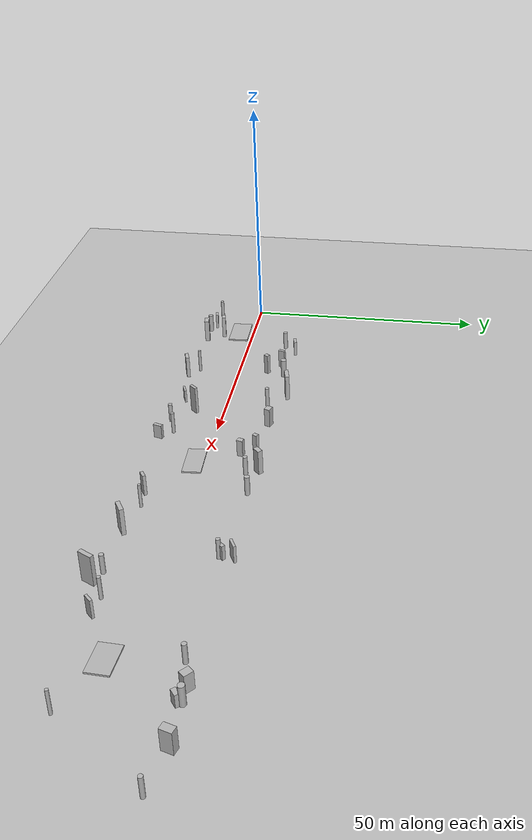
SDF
<sdf version="1.9">
 <world name="long_open_featured_speed">
  <physics type="ode">
   <max_step_size>0.004</max_step_size>
   <real_time_factor>0.8</real_time_factor>
   <real_time_update_rate>200</real_time_update_rate>
  </physics>
  <gravity>0 0 -9.8</gravity>
  <scene>
   <grid>true</grid>
   <ambient>0.4 0.4 0.4 1</ambient>
   <background>0.72 0.78 0.85 1</background>
   <shadows>true</shadows>
  </scene>
  <model name="ground_plane">
   <static>true</static>
   <link name="link">
    <collision name="collision">
     <geometry><plane><normal>0 0 1</normal><size>260 60</size></plane></geometry>
    </collision>
    <visual name="visual">
     <geometry><plane><normal>0 0 1</normal><size>260 60</size></plane></geometry>
     <material><ambient>0.75 0.75 0.75 1</ambient><diffuse>0.75 0.75 0.75 1</diffuse></material>
    </visual>
   </link>
  </model>
  <model name="open_speed_tree_01">
   <static>true</static>
   <pose>10 -10 2 0 0 0.1</pose>
   <link name="link">
    <collision name="collision">
     <geometry><cylinder><radius>0.5</radius><length>4</length></cylinder></geometry>
    </collision>
    <visual name="visual">
     <geometry><cylinder><radius>0.5</radius><length>4</length></cylinder></geometry>
    </visual>
   </link>
  </model>
  <model name="open_speed_tree_02">
   <static>true</static>
   <pose>28 10 2 0 0 -0.2</pose>
   <link name="link">
    <collision name="collision">
     <geometry><cylinder><radius>0.6</radius><length>4</length></cylinder></geometry>
    </collision>
    <visual name="visual">
     <geometry><cylinder><radius>0.6</radius><length>4</length></cylinder></geometry>
    </visual>
   </link>
  </model>
  <model name="open_speed_tree_03">
   <static>true</static>
   <pose>48 -10 2 0 0 0.3</pose>
   <link name="link">
    <collision name="collision">
     <geometry><cylinder><radius>0.4</radius><length>4</length></cylinder></geometry>
    </collision>
    <visual name="visual">
     <geometry><cylinder><radius>0.4</radius><length>4</length></cylinder></geometry>
    </visual>
   </link>
  </model>
  <model name="open_speed_tree_04">
   <static>true</static>
   <pose>70 10 2 0 0 -0.4</pose>
   <link name="link">
    <collision name="collision">
     <geometry><cylinder><radius>0.5</radius><length>4</length></cylinder></geometry>
    </collision>
    <visual name="visual">
     <geometry><cylinder><radius>0.5</radius><length>4</length></cylinder></geometry>
    </visual>
   </link>
  </model>
  <model name="open_speed_tree_05">
   <static>true</static>
   <pose>94 -10 2 0 0 0.5</pose>
   <link name="link">
    <collision name="collision">
     <geometry><cylinder><radius>0.45</radius><length>4</length></cylinder></geometry>
    </collision>
    <visual name="visual">
     <geometry><cylinder><radius>0.45</radius><length>4</length></cylinder></geometry>
    </visual>
   </link>
  </model>
  <model name="open_speed_tree_06">
   <static>true</static>
   <pose>120 10 2 0 0 -0.6</pose>
   <link name="link">
    <collision name="collision">
     <geometry><cylinder><radius>0.6</radius><length>4</length></cylinder></geometry>
    </collision>
    <visual name="visual">
     <geometry><cylinder><radius>0.6</radius><length>4</length></cylinder></geometry>
    </visual>
   </link>
  </model>
  <model name="open_speed_panel_01">
   <static>true</static>
   <pose>18 11 1.6 0 0 0.2</pose>
   <link name="link">
    <collision name="collision"><geometry><box><size>1.8 0.6 3.2</size></box></geometry></collision>
    <visual name="visual"><geometry><box><size>1.8 0.6 3.2</size></box></geometry></visual>
   </link>
  </model>
  <model name="open_speed_panel_02">
   <static>true</static>
   <pose>54 -11 1.5 0 0 -0.3</pose>
   <link name="link">
    <collision name="collision"><geometry><box><size>0.7 1.8 3</size></box></geometry></collision>
    <visual name="visual"><geometry><box><size>0.7 1.8 3</size></box></geometry></visual>
   </link>
  </model>
  <model name="open_speed_panel_03">
   <static>true</static>
   <pose>88 11 1.8 0 0 0.5</pose>
   <link name="link">
    <collision name="collision"><geometry><box><size>2.2 0.5 3.6</size></box></geometry></collision>
    <visual name="visual"><geometry><box><size>2.2 0.5 3.6</size></box></geometry></visual>
   </link>
  </model>
  <model name="open_speed_corner_01">
   <static>true</static>
   <pose>36 12 2.8 0 0 0.25</pose>
   <link name="link">
    <collision name="collision"><geometry><box><size>2.8 0.8 5.6</size></box></geometry></collision>
    <visual name="visual"><geometry><box><size>2.8 0.8 5.6</size></box></geometry></visual>
   </link>
  </model>
  <model name="open_speed_post_01">
   <static>true</static>
   <pose>4 -8.5 2.3 0 0 0</pose>
   <link name="link">
    <collision name="collision">
     <geometry><cylinder><radius>0.35</radius><length>4.6</length></cylinder></geometry>
    </collision>
    <visual name="visual">
     <geometry><cylinder><radius>0.35</radius><length>4.6</length></cylinder></geometry>
    </visual>
   </link>
  </model>
  <model name="open_speed_post_02">
   <static>true</static>
   <pose>16 8.5 2.0 0 0 0.2</pose>
   <link name="link">
    <collision name="collision">
     <geometry><cylinder><radius>0.45</radius><length>4</length></cylinder></geometry>
    </collision>
    <visual name="visual">
     <geometry><cylinder><radius>0.45</radius><length>4</length></cylinder></geometry>
    </visual>
   </link>
  </model>
  <model name="open_speed_post_03">
   <static>true</static>
   <pose>28 -8.5 2.5 0 0 -0.2</pose>
   <link name="link">
    <collision name="collision">
     <geometry><cylinder><radius>0.3</radius><length>5</length></cylinder></geometry>
    </collision>
    <visual name="visual">
     <geometry><cylinder><radius>0.3</radius><length>5</length></cylinder></geometry>
    </visual>
   </link>
  </model>
  <model name="open_speed_post_04">
   <static>true</static>
   <pose>40 8.5 2.1 0 0 0.3</pose>
   <link name="link">
    <collision name="collision">
     <geometry><cylinder><radius>0.4</radius><length>4.2</length></cylinder></geometry>
    </collision>
    <visual name="visual">
     <geometry><cylinder><radius>0.4</radius><length>4.2</length></cylinder></geometry>
    </visual>
   </link>
  </model>
  <model name="open_speed_post_05">
   <static>true</static>
   <pose>52 -8.5 2.3 0 0 -0.3</pose>
   <link name="link">
    <collision name="collision">
     <geometry><cylinder><radius>0.35</radius><length>4.6</length></cylinder></geometry>
    </collision>
    <visual name="visual">
     <geometry><cylinder><radius>0.35</radius><length>4.6</length></cylinder></geometry>
    </visual>
   </link>
  </model>
  <model name="open_speed_post_06">
   <static>true</static>
   <pose>64 8.5 2.0 0 0 0.4</pose>
   <link name="link">
    <collision name="collision">
     <geometry><cylinder><radius>0.45</radius><length>4</length></cylinder></geometry>
    </collision>
    <visual name="visual">
     <geometry><cylinder><radius>0.45</radius><length>4</length></cylinder></geometry>
    </visual>
   </link>
  </model>
  <model name="open_speed_post_07">
   <static>true</static>
   <pose>76 -8.5 2.5 0 0 -0.4</pose>
   <link name="link">
    <collision name="collision">
     <geometry><cylinder><radius>0.3</radius><length>5</length></cylinder></geometry>
    </collision>
    <visual name="visual">
     <geometry><cylinder><radius>0.3</radius><length>5</length></cylinder></geometry>
    </visual>
   </link>
  </model>
  <model name="open_speed_post_08">
   <static>true</static>
   <pose>88 8.5 2.1 0 0 0.5</pose>
   <link name="link">
    <collision name="collision">
     <geometry><cylinder><radius>0.4</radius><length>4.2</length></cylinder></geometry>
    </collision>
    <visual name="visual">
     <geometry><cylinder><radius>0.4</radius><length>4.2</length></cylinder></geometry>
    </visual>
   </link>
  </model>
  <model name="open_speed_post_09">
   <static>true</static>
   <pose>100 -8.5 2.3 0 0 -0.5</pose>
   <link name="link">
    <collision name="collision">
     <geometry><cylinder><radius>0.35</radius><length>4.6</length></cylinder></geometry>
    </collision>
    <visual name="visual">
     <geometry><cylinder><radius>0.35</radius><length>4.6</length></cylinder></geometry>
    </visual>
   </link>
  </model>
  <model name="open_speed_post_10">
   <static>true</static>
   <pose>112 8.5 2.0 0 0 0.6</pose>
   <link name="link">
    <collision name="collision">
     <geometry><cylinder><radius>0.45</radius><length>4</length></cylinder></geometry>
    </collision>
    <visual name="visual">
     <geometry><cylinder><radius>0.45</radius><length>4</length></cylinder></geometry>
    </visual>
   </link>
  </model>
  <model name="open_speed_post_11">
   <static>true</static>
   <pose>124 -8.5 2.5 0 0 -0.6</pose>
   <link name="link">
    <collision name="collision">
     <geometry><cylinder><radius>0.3</radius><length>5</length></cylinder></geometry>
    </collision>
    <visual name="visual">
     <geometry><cylinder><radius>0.3</radius><length>5</length></cylinder></geometry>
    </visual>
   </link>
  </model>
  <model name="open_speed_post_12">
   <static>true</static>
   <pose>136 8.5 2.1 0 0 0.7</pose>
   <link name="link">
    <collision name="collision">
     <geometry><cylinder><radius>0.4</radius><length>4.2</length></cylinder></geometry>
    </collision>
    <visual name="visual">
     <geometry><cylinder><radius>0.4</radius><length>4.2</length></cylinder></geometry>
    </visual>
   </link>
  </model>
  <model name="open_speed_texture_01">
   <static>true</static>
   <pose>8 -9.0 1.7 0 0 0.15</pose>
   <link name="link">
    <collision name="collision"><geometry><box><size>1.2 0.5 3.4</size></box></geometry></collision>
    <visual name="visual"><geometry><box><size>1.2 0.5 3.4</size></box></geometry></visual>
   </link>
  </model>
  <model name="open_speed_texture_02">
   <static>true</static>
   <pose>24 9.0 2.0 0 0 -0.30</pose>
   <link name="link">
    <collision name="collision"><geometry><box><size>0.6 1.4 4.0</size></box></geometry></collision>
    <visual name="visual"><geometry><box><size>0.6 1.4 4.0</size></box></geometry></visual>
   </link>
  </model>
  <model name="open_speed_texture_03">
   <static>true</static>
   <pose>40 -9.0 1.4 0 0 0.40</pose>
   <link name="link">
    <collision name="collision"><geometry><box><size>2.0 0.4 2.8</size></box></geometry></collision>
    <visual name="visual"><geometry><box><size>2.0 0.4 2.8</size></box></geometry></visual>
   </link>
  </model>
  <model name="open_speed_texture_04">
   <static>true</static>
   <pose>56 9.0 1.8 0 0 -0.50</pose>
   <link name="link">
    <collision name="collision"><geometry><box><size>0.8 1.0 3.6</size></box></geometry></collision>
    <visual name="visual"><geometry><box><size>0.8 1.0 3.6</size></box></geometry></visual>
   </link>
  </model>
  <model name="open_speed_texture_05">
   <static>true</static>
   <pose>72 -9.0 2.2 0 0 0.60</pose>
   <link name="link">
    <collision name="collision"><geometry><box><size>1.5 0.6 4.4</size></box></geometry></collision>
    <visual name="visual"><geometry><box><size>1.5 0.6 4.4</size></box></geometry></visual>
   </link>
  </model>
  <model name="open_speed_texture_06">
   <static>true</static>
   <pose>88 9.0 1.5 0 0 -0.70</pose>
   <link name="link">
    <collision name="collision"><geometry><box><size>0.7 1.2 3.0</size></box></geometry></collision>
    <visual name="visual"><geometry><box><size>0.7 1.2 3.0</size></box></geometry></visual>
   </link>
  </model>
  <model name="open_speed_texture_07">
   <static>true</static>
   <pose>104 -9.0 1.9 0 0 0.80</pose>
   <link name="link">
    <collision name="collision"><geometry><box><size>1.8 0.5 3.8</size></box></geometry></collision>
    <visual name="visual"><geometry><box><size>1.8 0.5 3.8</size></box></geometry></visual>
   </link>
  </model>
  <model name="open_speed_texture_08">
   <static>true</static>
   <pose>120 9.0 1.3 0 0 -0.90</pose>
   <link name="link">
    <collision name="collision"><geometry><box><size>0.9 1.5 2.6</size></box></geometry></collision>
    <visual name="visual"><geometry><box><size>0.9 1.5 2.6</size></box></geometry></visual>
   </link>
  </model>
  <model name="open_speed_corner_02">
   <static>true</static>
   <pose>14 -10.0 2.5 0 0 0.20</pose>
   <link name="link">
    <collision name="collision"><geometry><box><size>2.0 1.0 5.0</size></box></geometry></collision>
    <visual name="visual"><geometry><box><size>2.0 1.0 5.0</size></box></geometry></visual>
   </link>
  </model>
  <model name="open_speed_corner_03">
   <static>true</static>
   <pose>47 10.0 2.0 0 0 -0.35</pose>
   <link name="link">
    <collision name="collision"><geometry><box><size>1.4 1.2 4.0</size></box></geometry></collision>
    <visual name="visual"><geometry><box><size>1.4 1.2 4.0</size></box></geometry></visual>
   </link>
  </model>
  <model name="open_speed_corner_04">
   <static>true</static>
   <pose>83 -10.0 2.8 0 0 0.55</pose>
   <link name="link">
    <collision name="collision"><geometry><box><size>2.6 0.8 5.6</size></box></geometry></collision>
    <visual name="visual"><geometry><box><size>2.6 0.8 5.6</size></box></geometry></visual>
   </link>
  </model>
  <model name="open_speed_corner_05">
   <static>true</static>
   <pose>117 10.0 1.8 0 0 -0.75</pose>
   <link name="link">
    <collision name="collision"><geometry><box><size>1.8 1.4 3.6</size></box></geometry></collision>
    <visual name="visual"><geometry><box><size>1.8 1.4 3.6</size></box></geometry></visual>
   </link>
  </model>
  <model name="open_speed_landmark_01">
   <static>true</static>
   <pose>31 -10.5 3.0 0 0 0.35</pose>
   <link name="link">
    <collision name="collision"><geometry><box><size>2.0 0.7 4.8</size></box></geometry></collision>
    <visual name="visual"><geometry><box><size>2.0 0.7 4.8</size></box></geometry></visual>
   </link>
  </model>
  <model name="open_speed_landmark_02">
   <static>true</static>
   <pose>63 10.8 2.6 0 0 -0.80</pose>
   <link name="link">
    <collision name="collision"><geometry><box><size>1.0 1.6 5.2</size></box></geometry></collision>
    <visual name="visual"><geometry><box><size>1.0 1.6 5.2</size></box></geometry></visual>
   </link>
  </model>
  <model name="open_speed_landmark_03">
   <static>true</static>
   <pose>97 -11.4 3.6 0 0 1.10</pose>
   <link name="link">
    <collision name="collision"><geometry><box><size>2.8 0.8 6.2</size></box></geometry></collision>
    <visual name="visual"><geometry><box><size>2.8 0.8 6.2</size></box></geometry></visual>
   </link>
  </model>
  <model name="open_speed_landmark_04">
   <static>true</static>
   <pose>128 10.1 2.2 0 0 -0.30</pose>
   <link name="link">
    <collision name="collision"><geometry><box><size>1.4 2.2 4.4</size></box></geometry></collision>
    <visual name="visual"><geometry><box><size>1.4 2.2 4.4</size></box></geometry></visual>
   </link>
  </model>
  <model name="open_speed_near_01">
   <static>true</static>
   <pose>12 -6.5 2.5 0 0 0.20</pose>
   <link name="link">
    <collision name="collision"><geometry><box><size>1.4 0.8 5.0</size></box></geometry></collision>
    <visual name="visual"><geometry><box><size>1.4 0.8 5.0</size></box></geometry></visual>
   </link>
  </model>
  <model name="open_speed_near_02">
   <static>true</static>
   <pose>27 6.2 2.2 0 0 -0.55</pose>
   <link name="link">
    <collision name="collision"><geometry><box><size>0.8 1.0 4.4</size></box></geometry></collision>
    <visual name="visual"><geometry><box><size>0.8 1.0 4.4</size></box></geometry></visual>
   </link>
  </model>
  <model name="open_speed_near_03">
   <static>true</static>
   <pose>44 -6.0 3.0 0 0 0.85</pose>
   <link name="link">
    <collision name="collision"><geometry><box><size>1.8 0.6 6.0</size></box></geometry></collision>
    <visual name="visual"><geometry><box><size>1.8 0.6 6.0</size></box></geometry></visual>
   </link>
  </model>
  <model name="open_speed_near_04">
   <static>true</static>
   <pose>58 6.4 1.8 0 0 -0.25</pose>
   <link name="link">
    <collision name="collision"><geometry><box><size>1.0 1.2 3.6</size></box></geometry></collision>
    <visual name="visual"><geometry><box><size>1.0 1.2 3.6</size></box></geometry></visual>
   </link>
  </model>
  <model name="open_speed_overhead_01">
   <static>true</static>
   <pose>24 0 8.0 0 0 0.03</pose>
   <link name="link">
    <collision name="collision"><geometry><box><size>7 4 0.3</size></box></geometry></collision>
    <visual name="visual"><geometry><box><size>7 4 0.3</size></box></geometry></visual>
   </link>
  </model>
  <model name="open_speed_overhead_02">
   <static>true</static>
   <pose>72 1 8.2 0 0 0.05</pose>
   <link name="link">
    <collision name="collision"><geometry><box><size>7 3.5 0.3</size></box></geometry></collision>
    <visual name="visual"><geometry><box><size>7 3.5 0.3</size></box></geometry></visual>
   </link>
  </model>
  <model name="open_speed_overhead_03">
   <static>true</static>
   <pose>120 -1 7.8 0 0 -0.06</pose>
   <link name="link">
    <collision name="collision"><geometry><box><size>6 4 0.3</size></box></geometry></collision>
    <visual name="visual"><geometry><box><size>6 4 0.3</size></box></geometry></visual>
   </link>
  </model>
  <light name="sunUTC" type="directional">
   <pose>0 0 500 0 0 0</pose>
   <intensity>1</intensity>
   <direction>0.001 0.625 -0.78</direction>
  </light>
  <spherical_coordinates>
   <surface_model>EARTH_WGS84</surface_model>
   <world_frame_orientation>ENU</world_frame_orientation>
   <latitude_deg>10.8231</latitude_deg>
   <longitude_deg>106.6297</longitude_deg>
   <elevation>10</elevation>
  </spherical_coordinates>
 </world>
</sdf>
